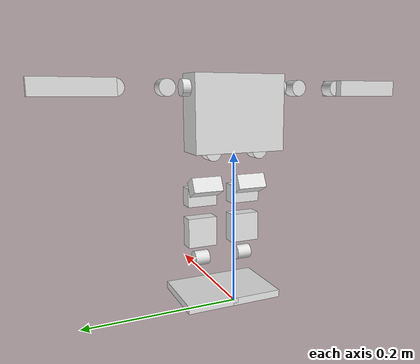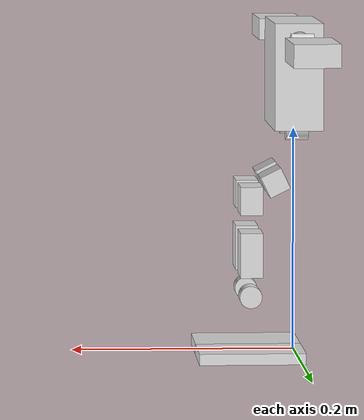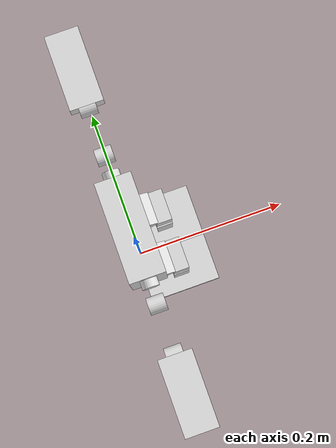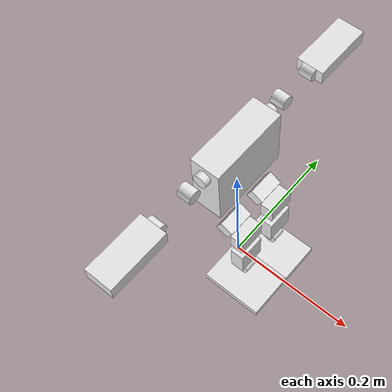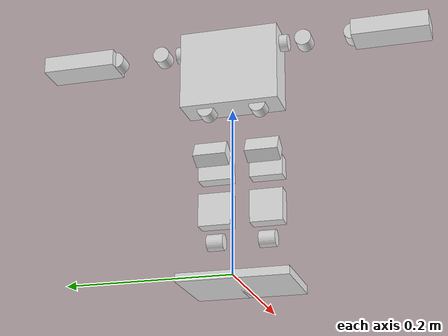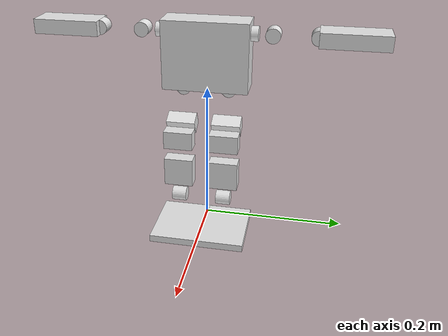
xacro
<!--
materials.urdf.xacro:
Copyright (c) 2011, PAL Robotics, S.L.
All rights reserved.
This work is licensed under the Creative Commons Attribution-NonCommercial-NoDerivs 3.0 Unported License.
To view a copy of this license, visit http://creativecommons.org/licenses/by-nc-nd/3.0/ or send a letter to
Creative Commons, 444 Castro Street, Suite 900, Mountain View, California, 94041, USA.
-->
<robot name="lobot" xmlns:xacro="http://ros.org/wiki/xacro">

    <xacro:include filename="$(find lobot_description)/urdf/materials.urdf.xacro" />
    <link name="world" />
    <joint name="world_joint" type="fixed">
        <parent link="world" />
        <child link="base_link" />
        <origin xyz="0  0 0.25" rpy="0 0 0" />
    </joint>
    <link name="base_link">
        <inertial>
            <mass value="0.083221" />
            <origin xyz="-0.01209 -0.00442 0.02145" rpy="0 0 0" />
            <inertia ixx="0.03408839175" ixy="0.00000898087" ixz="0.00238269732" iyy="0.03351929137" iyz="0.00049460232" izz="0.04506059363" />
        </inertial>
        <visual>
            <origin rpy="0 0 0" xyz="0 0 0" />
            <geometry>
                <box size="0.043 0.118 0.095" />
            </geometry>
            <material name="LightGrey" />
        </visual>
        <collision>
            <origin rpy="0 0 0" xyz="0 0 0" />
            <geometry>
                <box size="0.043 0.118 0.095" />
            </geometry>
        </collision>
    </link>

    <link name="IMU_link">
        <inertial>
            <mass value="0.0001" />
            <origin rpy="0 0 0" xyz="0 0 0" />
            <inertia ixx="0.0001" ixy="0" ixz="0" iyy="0.000001" iyz="0" izz="0.0001" />
        </inertial>
        <visual>
            <origin rpy="0 0 0" xyz="0 0 0" />
            <geometry>
                <box size="0.001 0.001 0.001" />
            </geometry>
            <material name="red" />
        </visual>
        <collision>
            <origin rpy="0 0 0" xyz="0 0 0" />
            <geometry>
                <box size=".001 .001 .001" />
            </geometry>
        </collision>
    </link>
    <joint name="IMU_joint" type="fixed">
        <axis xyz="1 0 0" />
        <origin xyz="0 0 0" />
        <parent link="base_link" />
        <child link="IMU_link" />
    </joint>
    <xacro:include filename="$(find lobot_description)/urdf/leg/leg.urdf.xacro" />
    <xacro:include filename="$(find lobot_description)/urdf/arm/arm.urdf.xacro" />
    <xacro:include filename="$(find lobot_description)/gazebo/gazebo.urdf.xacro" />

    <xacro:lobot_leg name="leg" side="right" reflect="1.0" parent="base_link" />
    <xacro:lobot_leg name="leg" side="left" reflect="-1.0" parent="base_link" />
    <xacro:lobot_arm name="arm" side="right" reflect="1.0" parent="base_link" />
    <xacro:lobot_arm name="arm" side="left" reflect="-1.0" parent="base_link" />

</robot>

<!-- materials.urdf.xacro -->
<robot>
  <material name="Blue">
    <color rgba="0.0 0.0 0.8 1.0"/>
  </material>

  <material name="Green">
    <color rgba="0.0 0.8 0.0 1.0"/>
  </material>

  <material name="Grey">
    <color rgba="0.7 0.7 0.7 1.0"/>
  </material>

  <material name="LightGrey">
    <color rgba="0.9 0.9 0.9 1.0"/>
  </material>

 <material name="DarkGrey">
   <color rgba="0.2 0.2 0.2 1.0"/>
 </material>

  <material name="Red">
    <color rgba="0.8 0.0 0.0 1.0"/>
  </material>

  <material name="White">
    <color rgba="1.0 1.0 1.0 1.0"/>
  </material>
</robot>

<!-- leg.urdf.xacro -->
<!--
  Author: Poh Zhi-Ee (zhiee.poh@httechnology.com)
  Copyright (c) 2019, SIW Manufacturing Sdn. Bhd.
  All rights reserved.
-->
<robot name="lobot" xmlns:xacro="http://ros.org/wiki/xacro">

    <!--File includes-->
    <xacro:include filename="$(find lobot_description)/urdf/leg/leg.transmission.xacro" />

    <!--Constant parameters-->

    <xacro:property name="deg_to_rad" value="0.01745329251994329577" />

    <xacro:property name="leg_friction" value="1.0" />
    <xacro:property name="leg_damping" value="1.0" />
    <xacro:property name="leg_reduction" value="1.0" />
    <xacro:property name="leg_eps" value="0.0" />
    <xacro:property name="leg_version" value="0.0" />

    <xacro:property name="leg_1_joint_max_vel" value="4" />
    <xacro:property name="leg_2_joint_max_vel" value="${3.94 if leg_version=='v1' else 2.27}" />
    <xacro:property name="leg_3_joint_max_vel" value="${6.0  if leg_version=='v1' else 3.64}" />
    <xacro:property name="leg_4_joint_max_vel" value="${4.25 if leg_version=='v1' else 3.225}" />
    <xacro:property name="leg_5_joint_max_vel" value="${4.0  if leg_version=='v1' else 2.44}" />
    <xacro:property name="leg_6_joint_max_vel" value="${3.94 if leg_version=='v1' else 2.27}" />

    <xacro:property name="leg_1_joint_effort" value="${50.69 if leg_version=='v1' else 42.7}" />
    <xacro:property name="leg_2_joint_effort" value="${71.4  if leg_version=='v1' else 64.0}" />
    <xacro:property name="leg_3_joint_effort" value="${62.9  if leg_version=='v1' else 55.7}" />
    <xacro:property name="leg_4_joint_effort" value="${140.4 if leg_version=='v1' else 138.3}" />
    <xacro:property name="leg_5_joint_effort" value="${91.6  if leg_version=='v1' else 80.9}" />
    <xacro:property name="leg_6_joint_effort" value="${71.48 if leg_version=='v1' else 64.0}" />

    <xacro:macro name="lobot_leg" params="name parent side reflect">

        <link name="leg_${side}_1_link">
            <inertial>
                <mass value="0.02901" />
                <origin xyz="0 0 0" rpy="0.0 0.0 0.0" />
                <inertia ixx="0.00132187534" ixy="0.00000001514" ixz="0.00040022268" iyy="0.0018528617" iyz="0.00000050713" izz="0.00084231334" />
            </inertial>
            <visual>
                <origin rpy="0 ${90*deg_to_rad} 0" xyz="0 0 0" />
                <geometry>
                    <cylinder radius="0.01" length="0.02" />
                </geometry>
                <material name="LightGrey" />
            </visual>
            <collision>
                <origin rpy="0 ${90*deg_to_rad} 0" xyz="0 0 0" />
                <geometry>
                    <cylinder radius="0.01" length="0.02" />
                </geometry>
            </collision>
        </link>

        <joint name="leg_${side}_1_joint" type="revolute">
            <origin xyz="0  ${-reflect*0.0315} -0.0475" rpy="0 0 0" />
            <axis xyz="1 0 0" />
            <parent link="${parent}" />
            <child link="leg_${side}_1_link" />
            <limit lower="-1.57" upper="1.57" effort="50" velocity="4" />
        </joint>

        <link name="leg_${side}_2_link">
            <inertial>
                <mass value="0.069621" />
                <origin xyz="0 0 0" rpy="0.0 0.0 0.0" />
                <inertia ixx="0.0008416476" ixy="-0.00000268743" ixz="0.00000667199" iyy="0.00039794844" iyz="0.00002668971" izz="0.00084196694" />
            </inertial>
            <visual>
                    <origin rpy="0 ${26.565*deg_to_rad} 0" xyz="0.02 0 0" />
                <geometry>
                    <box size="0.02 0.04 0.02" />
                </geometry>
                <material name="LightGrey" />
            </visual>
            <collision>
                <origin rpy="0 ${26.565*deg_to_rad} 0" xyz="0.02 0 0" />
                <geometry>
                    <box size="0.03 0.03 0.02" />
                </geometry>
            </collision>
        </link>

        <joint name="leg_${side}_2_joint" type="revolute">
            <origin xyz="0 0 -0.04707" rpy="0 0 0" />
            <axis xyz="0 1 0" />
            <parent link="leg_${side}_1_link" />
            <child link="leg_${side}_2_link" />
            <limit lower="${-22.5*deg_to_rad - reflect*7.5*deg_to_rad}" upper="${22.5*deg_to_rad - reflect*7.5*deg_to_rad}" effort="${leg_2_joint_effort}" velocity="${leg_2_joint_max_vel}" />
        </joint>

        <link name="leg_${side}_3a_link">
            <inertial>
                <mass value="0.04" />
                <origin xyz="0 0 0" rpy="0.0 0.0 0.0" />
                <inertia ixx="0.0008416476" ixy="-0.00000268743" ixz="0.00000667199" iyy="0.00039794844" iyz="0.00002668971" izz="0.00084196694" />
            </inertial>
            <visual>
                <origin rpy="0 0 0" xyz="0 0 0.004" />
                <geometry>
                    <box size="0.02 0.04 0.025" />
                </geometry>
                <material name="LightGrey" />
            </visual>
            <collision>
                <origin rpy="0 0 0" xyz="0 0 0.004" />
                <geometry>
                    <box size="0.02 0.04 0.025" />
                </geometry>
            </collision>
        </link>

        <joint name="leg_${side}_3a_joint" type="fixed">
            <origin xyz="0.04104 0 -0.020" rpy="0 0 0" />
            <parent link="leg_${side}_2_link" />
            <child link="leg_${side}_3a_link" />
        </joint>

        <link name="leg_${side}_3_link">
            <inertial>
                <mass value="0.05" />
                <origin xyz="0 0 0" rpy="0.0 0.0 0.0" />
                <inertia ixx="0.0008416476" ixy="-0.00000268743" ixz="0.00000667199" iyy="0.00039794844" iyz="0.00002668971" izz="0.00084196694" />
            </inertial>
            <visual>
                <origin rpy="0 0 0" xyz="0 0 -0.02" />
                <geometry>
                    <box size="0.02 0.04 0.04" />
                </geometry>
                <material name="LightGrey" />
            </visual>
            <collision>
                <origin rpy="0 0 0" xyz="0 0 -0.02" />
                <geometry>
                    <box size="0.02 0.04 0.04" />
                </geometry>
            </collision>
        </link>

        <joint name="leg_${side}_3_joint" type="revolute">
            <origin xyz="0 0 -0.02477" rpy="0 0 0" />
            <axis xyz="0 1 0" />
            <parent link="leg_${side}_3a_link" />
            <child link="leg_${side}_3_link" />
            <limit lower="${ -100.0 * deg_to_rad}" upper="${45 * deg_to_rad}" effort="${leg_3_joint_effort}" velocity="${leg_3_joint_max_vel}" />

        </joint>

        <link name="leg_${side}_4_link">
            <inertial>
                <mass value="0.06" />
                <origin xyz="0 0 0" rpy="0.0 0.0 0.0" />
                <inertia ixx="0.0008416476" ixy="-0.00000268743" ixz="0.00000667199" iyy="0.00039794844" iyz="0.00002668971" izz="0.00084196694" />
            </inertial>
            <visual>
                <origin rpy="${90*deg_to_rad} 0 0" xyz="0 0 0" />
                <geometry>
                    <cylinder radius="0.01" length="0.02" />
                </geometry>
                <material name="LightGrey" />
            </visual>
            <collision>
                <origin rpy="${90*deg_to_rad} 0 0" xyz="0 0 0" />
                <geometry>
                    <cylinder radius="0.01" length="0.02" />
                </geometry>
            </collision>
        </link>

        <joint name="leg_${side}_4_joint" type="revolute">
            <origin xyz="0 0 -0.05856" rpy="0 0 0" />
            <axis xyz="0 1 0" />
            <parent link="leg_${side}_3_link" />
            <child link="leg_${side}_4_link" />
            <dynamics friction="${leg_friction}" damping="${leg_damping}" />
            <limit lower="${ -100.0 * deg_to_rad}" upper="${45 * deg_to_rad}" effort="${leg_3_joint_effort}" velocity="${leg_3_joint_max_vel}" />

            <safety_controller k_position="100" k_velocity="100" soft_lower_limit="${-100.0 * deg_to_rad + leg_eps}" soft_upper_limit="${  45.0 * deg_to_rad - leg_eps}" />
        </joint>

        <link name="leg_${side}_5_link">
            <inertial>
                <mass value="0.05" />
                <origin xyz="0 0 0" rpy="0.0 0.0 0.0" />
                <inertia ixx="0.0008416476" ixy="-0.00000268743" ixz="0.00000667199" iyy="0.00039794844" iyz="0.00002668971" izz="0.00084196694" />
            </inertial>
            <visual>
                <origin rpy="0 0 0" xyz="0 0 -0.005" />
                <geometry>
                    <box size="0.095 0.07 0.01" />
                </geometry>
                <material name="LightGrey" />
            </visual>
            <collision>
                <origin rpy="0 0 0" xyz="0 0 -0.005" />
                <geometry>
                    <box size="0.095 0.07 0.01" />
                </geometry>
            </collision>
        </link>

        <joint name="leg_${side}_5_joint" type="revolute">
            <origin xyz="0 0 -0.04707" rpy="0 0 0" />
            <axis xyz="1 0 0" />
            <parent link="leg_${side}_4_link" />
            <child link="leg_${side}_5_link" />
            <limit lower="${ -100.0 * deg_to_rad}" upper="${45 * deg_to_rad}" effort="${leg_3_joint_effort}" velocity="${leg_3_joint_max_vel}" />
        </joint>

        <gazebo reference="leg_${side}_1_link">
            <mu1>0.9</mu1>
            <mu2>0.9</mu2>
        </gazebo>

        <gazebo reference="leg_${side}_1_joint">
            <implicitSpringDamper>1</implicitSpringDamper>
        </gazebo>
        <gazebo reference="leg_${side}_2_joint">
            <implicitSpringDamper>1</implicitSpringDamper>
        </gazebo>
        <gazebo reference="leg_${side}_3_joint">
            <implicitSpringDamper>1</implicitSpringDamper>
        </gazebo>
        <gazebo reference="leg_${side}_4_joint">
            <implicitSpringDamper>1</implicitSpringDamper>
        </gazebo>

        <xacro:lobot_leg_transmission name="${name}" side="${side}" number="1" reduction="${leg_reduction}" />
        <xacro:lobot_leg_transmission name="${name}" side="${side}" number="2" reduction="${leg_reduction}" />
        <xacro:lobot_leg_transmission name="${name}" side="${side}" number="3" reduction="${leg_reduction}" />
        <xacro:lobot_leg_transmission name="${name}" side="${side}" number="4" reduction="${leg_reduction}" />
    </xacro:macro>
</robot>

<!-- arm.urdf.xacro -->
<!--
  Author: Poh Zhi-Ee (zhiee.poh@httechnology.com)
  Copyright (c) 2019, SIW Manufacturing Sdn. Bhd.
  All rights reserved.
-->
<robot name="lobot" xmlns:xacro="http://ros.org/wiki/xacro">
    <!--File includes-->
    <xacro:include filename="$(find lobot_description)/urdf/arm/arm.transmission.xacro" />

    <!--Constant parameters-->
    <xacro:property name="deg_to_rad" value="0.01745329251994329577" />

    <xacro:macro name="lobot_arm" params="name parent side reflect">

        <link name="arm_${side}_1_link">
            <inertial>
                <mass value="0.05901" />
                <origin xyz="0 0 0" rpy="0 0 0" />
                <inertia ixx="0.00132187534" ixy="0.00000001514" ixz="0.00040022268" iyy="0.0018528617" iyz="0.00000050713" izz="0.00084231334" />
            </inertial>
            <visual>
                <origin rpy="${90*deg_to_rad} 0 0" xyz="0 0 0" />
                <geometry>
                    <cylinder radius="0.01" length="0.02" />
                </geometry>
                <material name="LightGrey" />
            </visual>
        </link>

        <joint name="arm_${side}_1_joint" type="revolute">
            <origin xyz="0  ${-reflect*0.059} 0.0305" rpy="0 0 0" />
            <axis xyz="0 1 0" />
            <parent link="${parent}" />
            <child link="arm_${side}_1_link" />
            <limit lower="-1.57" upper="1.57" effort="50" velocity="4" />
        </joint>

        <link name="arm_${side}_2_link">
            <inertial>
                <mass value="0.05901" />
                <origin xyz="0 0 0" rpy="0 0 0" />
                <inertia ixx="0.00132187534" ixy="0.00000001514" ixz="0.00040022268" iyy="0.0018528617" iyz="0.00000050713" izz="0.00084231334" />
            </inertial>
            <visual>
                <origin rpy="0 ${90*deg_to_rad} 0" xyz="0 0 0" />
                <geometry>
                    <cylinder radius="0.01" length="0.02" />
                </geometry>
                <material name="LightGrey" />
            </visual>
        </link>

        <joint name="arm_${side}_2_joint" type="revolute">
            <origin xyz="0 ${-reflect*0.02903} 0" rpy="0 0 0" />
            <axis xyz="1 0 0" />
            <parent link="arm_${side}_1_link" />
            <child link="arm_${side}_2_link" />
            <limit lower="${-90*deg_to_rad}" upper="${90*deg_to_rad}" effort="50" velocity="4" />
        </joint>

        <link name="arm_${side}_3_link">
            <inertial>
                <mass value="0.05901" />
                <origin xyz="0 0 0" rpy="0 0 0" />
                <inertia ixx="0.00132187534" ixy="0.00000001514" ixz="0.00040022268" iyy="0.0018528617" iyz="0.00000050713" izz="0.00084231334" />
            </inertial>
            <visual>
                <origin rpy="0 ${90*deg_to_rad} 0" xyz="0 0 0" />
                <geometry>
                    <cylinder radius="0.01" length="0.02" />
                </geometry>
                <material name="LightGrey" />
            </visual>
        </link>

        <joint name="arm_${side}_3_joint" type="revolute">
            <origin xyz="0 ${-reflect*0.05856} 0" rpy="0 0 0" />
            <axis xyz="1 0 0" />
            <parent link="arm_${side}_2_link" />
            <child link="arm_${side}_3_link" />
            <limit lower="${-90*deg_to_rad}" upper="${90*deg_to_rad}" effort="50" velocity="4" />
        </joint>
        <!-- Gripper fixed link-->
        <link name="gripper_${side}_link">
            <inertial>
                <mass value="0.05901" />
                <origin xyz="0 0 0" rpy="0 0 0" />
                <inertia ixx="0.00132187534" ixy="0.00000001514" ixz="0.00040022268" iyy="0.0018528617" iyz="0.00000050713" izz="0.00084231334" />
            </inertial>
            <visual>
                <origin rpy="0 0 0" xyz="0 0 0" />
                <geometry>
                    <box size="0.04 0.090 0.02" />
                </geometry>
                <material name="LightGrey" />
            </visual>
            <collision>
                <origin rpy="0 0 0" xyz="0 0 0" />
                <geometry>
                    <box size="0.04 0.090 0.02" />
                </geometry>
            </collision>
        </link>

        <joint name="gripper_${side}_joint" type="fixed">
            <origin xyz="0 ${-reflect*0.045} 0" rpy="0 0 0" />
            <parent link="arm_${side}_3_link" />
            <child link="gripper_${side}_link" />
        </joint>

        <xacro:lobot_arm_transmission name="${name}" side="${side}" number="1" reduction="${leg_reduction}" />
    </xacro:macro>

</robot>
